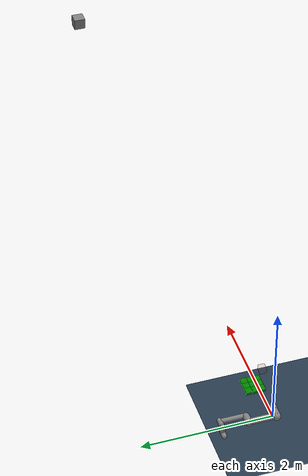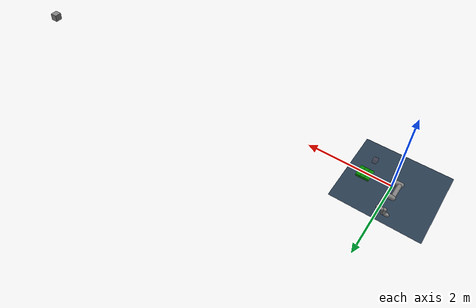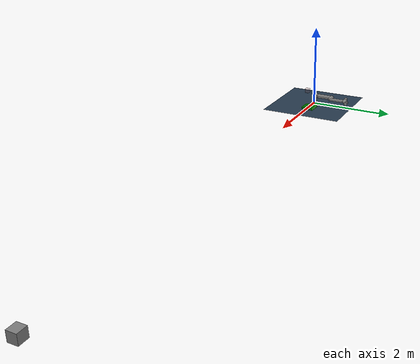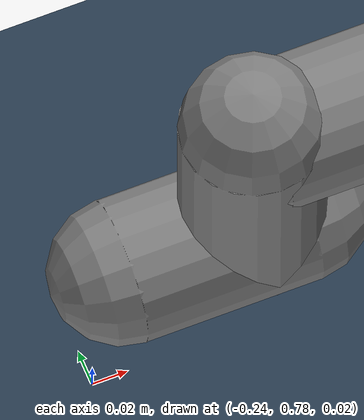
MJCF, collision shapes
<mujoco model="ur5e scene">
  <include file="ur5e.xml"/>

  <statistic center="0.3 0 0.3" extent="0.8" meansize="0.08"/>

  <visual>
    <headlight diffuse="0.6 0.6 0.6" ambient="0.1 0.1 0.1" specular="0 0 0"/>
    <global azimuth="15" elevation="-20"/>
  </visual>

  <asset>
    <texture name="grid" type="2d" builtin="checker" rgb1=".2 .3 .4" rgb2=".1 0.15 0.2" width="512" height="512"
      mark="cross" markrgb=".8 .8 .8"/>
    <material name="grid" texture="grid" texrepeat="1 1" texuniform="true"/>
  </asset>

  <worldbody>
    <light pos="0 0 1.5" directional="true"/>
      <body name="surface" pos="0.5 0.2 0.1">
        <inertial pos="0 0 0" mass="0.1" diaginertia="0.00016667 0.00016667 0.00016667"/>
        <geom friction="0.01" condim="3" pos="0 0 0" size="0.05 0.05 0.025" type="box" name="green_box1" rgba="0.0 0.5 0 1" priority="1"/>
        <geom friction="0.01" condim="3" pos="0.1 0 0" size="0.05 0.05 0.025" type="box" name="green_box2" rgba="0.0 0.5 0 1" priority="1"/>
        <geom friction="0.01" condim="3" pos="0.2 0 0" size="0.05 0.05 0.025" type="box" name="green_box3" rgba="0.0 0.5 0 1" priority="1"/>
        <geom friction="0.01" condim="3" pos="0 -0.1 0" size="0.05 0.05 0.025" type="box" name="green_box4" rgba="0.0 0.5 0 1" priority="1"/>
        <geom friction="0.01" condim="3" pos="0.1 -0.1 0" size="0.05 0.05 0.025" type="box" name="green_box5" rgba="0.0 0.5 0 1" priority="1"/>
        <geom friction="0.01" condim="3" pos="0.2 -0.1 0" size="0.05 0.05 0.025" type="box" name="green_box6" rgba="0.0 0.5 0 1" priority="1"/>
        <geom friction="0.01" condim="3" pos="0 -0.2 0" size="0.05 0.05 0.025" type="box" name="green_box7" rgba="0.0 0.5 0 1" priority="1"/>
        <geom friction="0.01" condim="3" pos="0.1 -0.2 0" size="0.05 0.05 0.025" type="box" name="green_box8" rgba="0.0 0.5 0 1" priority="1"/>
        <geom friction="0.01" condim="3" pos="0.2 -0.2 0" size="0.05 0.05 0.025" type="box" name="green_box9" rgba="0.0 0.5 0 1" priority="1"/>
    </body>
    <geom name="floor" size="1 1 0.01" type="plane" material="grid"/>
    <camera name="camera_front" pos="0.049 1.888 0.717" xyaxes="-0.998 0.056 -0.000 -0.019 -0.335 0.942"/>
		<camera name="camera_top" pos="0 0 2" euler="0 0 0" mode="fixed"/>
    <body name="target" pos="0.5 0 .5" quat="0 1 0 0" mocap="true">
      <geom type="box" size=".05 .05 .05" contype="0" conaffinity="0" rgba=".6 .3 .3 .2"/>
    </body>
    <body name="wall" pos="10.5 0 0.1">
      <geom name="wall" type="box" size=".1 .1 .1"/>
    </body>
  </worldbody>

  <sensor>
    <fromto geom1="wrist_3_link" geom2="wall" cutoff="1"/>
    <fromto geom1="wrist_3_link" geom2="floor" cutoff="1"/>
  </sensor>
</mujoco>

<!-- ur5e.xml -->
<mujoco model="ur5e">
  <compiler angle="radian" meshdir="assets" autolimits="true"/>

  <option integrator="implicitfast"/>

  <default>
    <default class="ur5e">
      <default class="visual">
        <geom type="mesh" contype="0" conaffinity="0" group="2"/>
      </default>
      <default class="collision">
        <geom type="capsule" group="3"/>
        <default class="eef_collision">
          <geom type="cylinder"/>
        </default>
      </default>
      <joint axis="0 1 0" range="-6.28319 6.28319"/>
      <default class="joint_limited">
        <joint range="-3.1415 3.1415"/>
      </default>
      <default class="position">
        <position ctrlrange="-6.2831 6.2831" kp="2000" kv="100" forcerange="-150 150"/>
        <default class="position_limited">
          <position ctrlrange="-3.1415 3.1415"/>
        </default>
        <default class="position_small">
          <position kp="500" kv="25" forcerange="-28 28"/>
        </default>
      </default>
    </default>
  </default>

  <asset>
    <material name="black" rgba="0.033 0.033 0.033 1"/>
    <material name="jointgray" rgba="0.278 0.278 0.278 1"/>
    <material name="linkgray" rgba="0.82 0.82 0.82 1"/>
    <material name="urblue" rgba="0.49 0.678 0.8 1"/>

    <mesh file="base_0.obj"/>
    <mesh file="base_1.obj"/>
    <mesh file="shoulder_0.obj"/>
    <mesh file="shoulder_1.obj"/>
    <mesh file="shoulder_2.obj"/>
    <mesh file="upperarm_0.obj"/>
    <mesh file="upperarm_1.obj"/>
    <mesh file="upperarm_2.obj"/>
    <mesh file="upperarm_3.obj"/>
    <mesh file="forearm_0.obj"/>
    <mesh file="forearm_1.obj"/>
    <mesh file="forearm_2.obj"/>
    <mesh file="forearm_3.obj"/>
    <mesh file="wrist1_0.obj"/>
    <mesh file="wrist1_1.obj"/>
    <mesh file="wrist1_2.obj"/>
    <mesh file="wrist2_0.obj"/>
    <mesh file="wrist2_1.obj"/>
    <mesh file="wrist2_2.obj"/>
    <mesh file="wrist3.obj"/>
  </asset>

  <worldbody>
    <body name="base" quat="1 0 0 1" childclass="ur5e">
      <inertial mass="4" pos="0 0 0" diaginertia="0.00443333156 0.00443333156 0.0072"/>
      <geom mesh="base_0" material="black" class="visual"/>
      <geom mesh="base_1" material="jointgray" class="visual"/>
      <body name="shoulder_link" pos="0 0 0.163">
        <inertial mass="3.7" pos="0 0 0" diaginertia="0.0102675 0.0102675 0.00666"/>
        <joint name="shoulder_pan" axis="0 0 1"/>
        <geom mesh="shoulder_0" material="urblue" class="visual"/>
        <geom mesh="shoulder_1" material="black" class="visual"/>
        <geom mesh="shoulder_2" material="jointgray" class="visual"/>
        <geom class="collision" size="0.06 0.06" pos="0 0 -0.04"/>
        <body name="upper_arm_link" pos="0 0.138 0" quat="1 0 1 0">
          <inertial mass="8.393" pos="0 0 0.2125" diaginertia="0.133886 0.133886 0.0151074"/>
          <joint name="shoulder_lift"/>
          <geom mesh="upperarm_0" material="linkgray" class="visual"/>
          <geom mesh="upperarm_1" material="black" class="visual"/>
          <geom mesh="upperarm_2" material="jointgray" class="visual"/>
          <geom mesh="upperarm_3" material="urblue" class="visual"/>
          <geom class="collision" pos="0 -0.04 0" quat="1 1 0 0" size="0.06 0.06"/>
          <geom class="collision" size="0.05 0.2" pos="0 0 0.2"/>
          <body name="forearm_link" pos="0 -0.131 0.425">
            <inertial mass="2.275" pos="0 0 0.196" diaginertia="0.0311796 0.0311796 0.004095"/>
            <joint name="elbow" class="joint_limited"/>
            <geom mesh="forearm_0" material="urblue" class="visual"/>
            <geom mesh="forearm_1" material="linkgray" class="visual"/>
            <geom mesh="forearm_2" material="black" class="visual"/>
            <geom mesh="forearm_3" material="jointgray" class="visual"/>
            <geom class="collision" pos="0 0.08 0" quat="1 1 0 0" size="0.055 0.06"/>
            <geom class="collision" size="0.038 0.19" pos="0 0 0.2"/>
            <body name="wrist_1_link" pos="0 0 0.392" quat="1 0 1 0">
              <inertial mass="1.219" pos="0 0.127 0" diaginertia="0.0025599 0.0025599 0.0021942"/>
              <joint name="wrist_1"/>
              <geom mesh="wrist1_0" material="black" class="visual"/>
              <geom mesh="wrist1_1" material="urblue" class="visual"/>
              <geom mesh="wrist1_2" material="jointgray" class="visual"/>
              <geom class="collision" pos="0 0.05 0" quat="1 1 0 0" size="0.04 0.07"/>
              <body name="wrist_2_link" pos="0 0.127 0">
                <inertial mass="1.219" pos="0 0 0.1" diaginertia="0.0025599 0.0025599 0.0021942"/>
                <joint name="wrist_2" axis="0 0 1"/>
                <geom mesh="wrist2_0" material="black" class="visual"/>
                <geom mesh="wrist2_1" material="urblue" class="visual"/>
                <geom mesh="wrist2_2" material="jointgray" class="visual"/>
                <geom name="wrist_2_link" class="collision" size="0.04 0.06" pos="0 0 0.04"/>
                <body name="wrist_3_link" pos="0 0 0.1">
                  <inertial mass="0.1879" pos="0 0.0771683 0" quat="1 0 0 1"
                    diaginertia="0.000132134 9.90863e-05 9.90863e-05"/>
                  <joint name="wrist_3"/>
                  <geom material="linkgray" mesh="wrist3" class="visual"/>
                  <geom name="wrist_3_link" class="collision" pos="0 0.025 0" quat="1 1 0 0" size="0.04 0.05"/>
                  <site name="attachment_site" size="0.01" pos="0 0.1 0" quat="-1 1 1 1" rgba="1 0 0 1" group="1"/>
                </body>
              </body>
            </body>
          </body>
        </body>
      </body>
    </body>
  </worldbody>

  <actuator>
    <position class="position" name="shoulder_pan" joint="shoulder_pan"/>
    <position class="position" name="shoulder_lift" joint="shoulder_lift"/>
    <position class="position_limited" name="elbow" joint="elbow"/>
    <position class="position_small" name="wrist_1" joint="wrist_1"/>
    <position class="position_small" name="wrist_2" joint="wrist_2"/>
    <position class="position_small" name="wrist_3" joint="wrist_3"/>
  </actuator>

  <keyframe>
    <key name="home" qpos="-1.5708 -1.5708 1.5708 -1.5708 -1.5708 0" ctrl="-1.5708 -1.5708 1.5708 -1.5708 -1.5708 0"/>
  </keyframe>
</mujoco>
